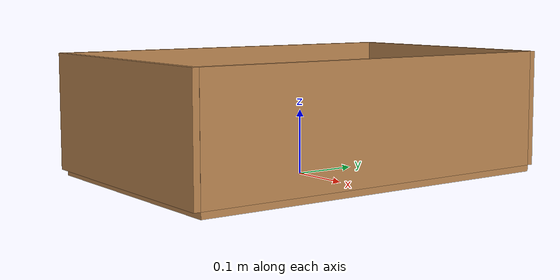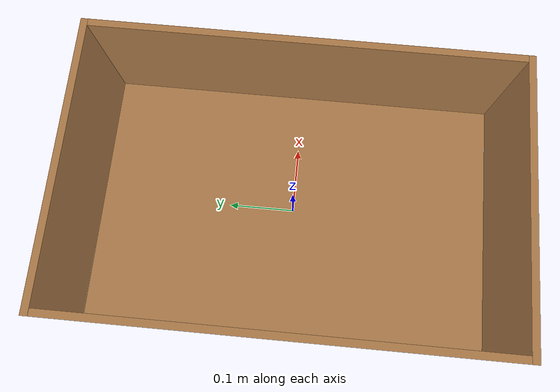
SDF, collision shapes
<?xml version="1.0"?>
<sdf version="1.6">
	<model name="bin">
		<pose>0 0 0.01 1.57 0 1.57</pose>
		<static>true</static>
		<link name="link_00">
			<pose>0.0 0 0 0 0 0</pose>
			<visual name="visual_00">
				<geometry>
					<mesh>
						<uri>model://bin/binv1.dae</uri>
					</mesh>
				</geometry>
				<material>
					<script>
						<name>Gazebo/Wood</name>
						<uri>file://media/materials/scripts/gazebo.material</uri>
					</script>
				</material>
			</visual>
			<collision name="bottom">
				<pose>0 -0.005 0.0 1.57 0 0</pose>
				<geometry>
					<box>
						<size>0.6 0.4 0.01</size>
					</box>
				</geometry>
				<surface>
					<friction>
						<ode>
							<mu>100</mu>
							<mu2>50</mu2>
							<fdir1>0.0 0.0 0.0</fdir1>
							<slip1>0.0</slip1>
							<slip2>0.0</slip2>
						</ode>
					</friction>
					<contact>
						<ode>
							<max_vel>0.1</max_vel>
							<min_depth>0.001</min_depth>
						</ode>
					</contact>
				</surface>
				<max_contacts>10</max_contacts>
			</collision>
			<collision name="back">
				<pose>0.0 0.09 -0.195 0 0 0</pose>
				<geometry>
					<box>
						<size>0.6 0.18 0.01</size>
					</box>
				</geometry>
			</collision>
			<collision name="front">
				<pose>0.0 0.09 0.195 0 0 0</pose>
				<geometry>
					<box>
						<size>0.6 0.18 0.01</size>
					</box>
				</geometry>
			</collision>
			<collision name="left">
				<pose>-0.305 0.09 0.0 0 1.57 0</pose>
				<geometry>
					<box>
						<size>0.4 0.18 0.01</size>
					</box>
				</geometry>
			</collision>
			<collision name="right">
				<pose>0.305 0.09 0.0 0 1.57 0</pose>
				<geometry>
					<box>
						<size>0.4 0.18 0.01</size>
					</box>
				</geometry>
			</collision>
		</link>
	</model>
</sdf>
